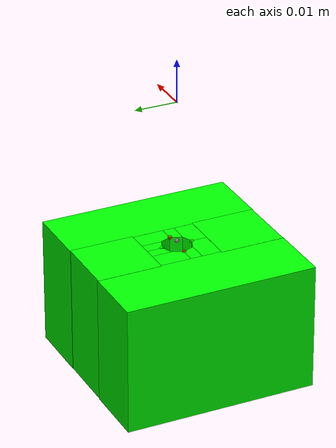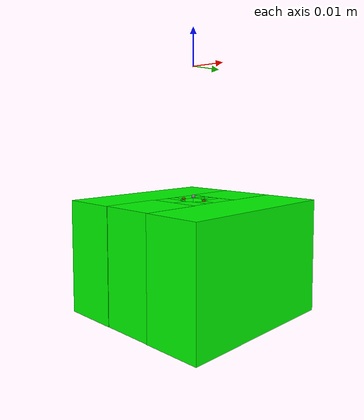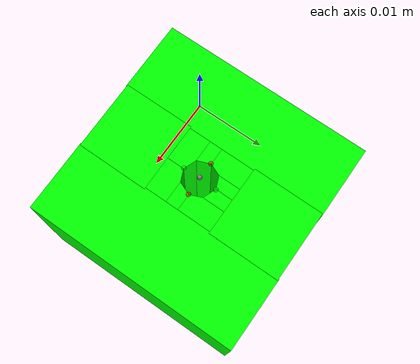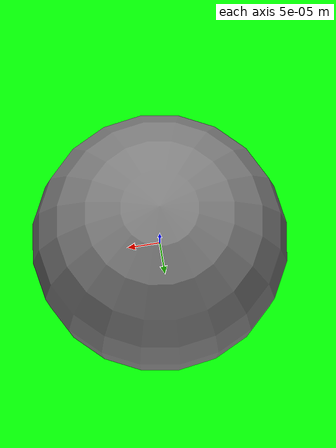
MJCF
<mujoco model="hole">

 <asset>

			<mesh file="meshes/object/Sphere_hull_1.stl" name="1" scale="1.5 1.5 3" />
			<mesh file="meshes/object/Cube_hull_1.stl" name="2" scale="1.5 1.5 3" />
			<mesh file="meshes/object/Cube_hull_2.stl" name="3" scale="1.5 1.5 3" />
			<mesh file="meshes/object/Cube_hull_3.stl" name="4" scale="1.5 1.5 3" />
			<mesh file="meshes/object/Cube_hull_4.stl" name="5" scale="1.5 1.5 3" />
			<mesh file="meshes/object/Cube_hull_5.stl" name="6" scale="1.5 1.5 3" />
			<mesh file="meshes/object/Cube_hull_6.stl" name="7" scale="1.5 1.5 3" />
			<mesh file="meshes/object/Cube_hull_7.stl" name="8" scale="1.5 1.5 3" />
			<mesh file="meshes/object/Cube_hull_8.stl" name="9" scale="1.5 1.5 3" />
			<mesh file="meshes/object/Cube_001_hull_1.stl" name="10" scale="1.5 1.5 2.97" />
			<mesh file="meshes/object/Cube_002_hull_1.stl" name="11" scale="1.5 1.5 2.97" />
			<mesh file="meshes/object/Cube_003_hull_1.stl" name="12" scale="1.5 1.5 2.92" />
			<mesh file="meshes/object/Cube_004_hull_1.stl" name="13" scale="1.5 1.5 2.92" />

	<texture file="../textures/ceramic.png" name="tex-ceramic"/>
    <material name="ceramic" reflectance="0.5" texrepeat="1 1" texture="tex-ceramic" texuniform="true"/>
  </asset>

  <worldbody>

    <body>
		<body name="object">
		<geom pos="0 0 -0.05" mesh="2" type="mesh" solimp="0.998 0.998 0.001" solref="0.001 1" density="6700" friction="0.95 0.3 0.1" material="ceramic" group="1" condim="4" rgba="0 1 0 1"  />
		<geom pos="0 0 -0.05" mesh="3" type="mesh" solimp="0.998 0.998 0.001" solref="0.001 1" density="6700" friction="0.95 0.3 0.1" material="ceramic" group="1" condim="4" rgba="0 1 0 1"  />
		<geom pos="0 0 -0.05" mesh="4" type="mesh" solimp="0.998 0.998 0.001" solref="0.001 1" density="6700" friction="0.95 0.3 0.1" material="ceramic" group="1" condim="4" rgba="0 1 0 1"  />
		<geom pos="0 0 -0.05" mesh="5" type="mesh" solimp="0.998 0.998 0.001" solref="0.001 1" density="6700" friction="0.95 0.3 0.1" material="ceramic" group="1" condim="4" rgba="0 1 0 1"  />
		<geom pos="0 0 -0.05" mesh="6" type="mesh" solimp="0.998 0.998 0.001" solref="0.001 1" density="6700" friction="0.95 0.3 0.1" material="ceramic" group="1" condim="4" rgba="0 1 0 1"  />
		<geom pos="0 0 -0.05" mesh="7" type="mesh" solimp="0.998 0.998 0.001" solref="0.001 1" density="6700" friction="0.95 0.3 0.1" material="ceramic" group="1" condim="4" rgba="0 1 0 1"  />
		<geom pos="0 0 -0.05" mesh="8" type="mesh" solimp="0.998 0.998 0.001" solref="0.001 1" density="6700" friction="0.95 0.3 0.1" material="ceramic" group="1" condim="4" rgba="0 1 0 1"  />
		<geom pos="0 0 -0.05" mesh="9" type="mesh" solimp="0.998 0.998 0.001" solref="0.001 1" density="6700" friction="0.95 0.3 0.1" material="ceramic" group="1" condim="4" rgba="0 1 0 1"  />
		<geom pos="0 0 -0.05" mesh="10" type="mesh" solimp="0.998 0.998 0.001" solref="0.001 1" density="6700" friction="0.95 0.3 0.1" material="ceramic" group="1" condim="4" rgba="0 1 0 1"  />
		<geom pos="0 0 -0.05" mesh="11" type="mesh" solimp="0.998 0.998 0.001" solref="0.001 1" density="6700" friction="0.95 0.3 0.1" material="ceramic" group="1" condim="4" rgba="0 1 0 1"  />
		<geom pos="0 0 -0.05" mesh="12" type="mesh" solimp="0.998 0.998 0.001" solref="0.001 1" density="6700" friction="0.95 0.3 0.1" material="ceramic" group="1" condim="4" rgba="0 1 0 1"  />
		<geom pos="0 0 -0.05" mesh="13" type="mesh" solimp="0.998 0.998 0.001" solref="0.001 1" density="6700" friction="0.95 0.3 0.1" material="ceramic" group="1" condim="4" rgba="0 1 0 1"  />

<!--		sphere above the hole (grey)-->
		<site name="middle_cylinder" pos="0.000 0.000 0.0" size="0.0002"/>

<!--		red dot inside the hole	-->
		<body name="hole" pos="0.00 0.000 -0.06">
			<camera mode="fixed" name="board" pos="0.15 0 0.18" quat="0.653 0.271 0.271 0.653" />
			<site name="surface" pos="0.0 0.0 0.026" size="0.0005" type="sphere" group="1"/>
			<site name="d_x" pos="0.0037 0 0.025" size="0.0005" rgba="1 0 0 0.5" type="sphere" group="1"/>
			<site name="d_y" pos="0 0.0037 0.025" size="0.0005" rgba="0 1 0 0.5" type="sphere" group="1"/>
			<site name="d_mx" pos="-0.0037 0 0.025" size="0.0005" rgba="1 0 0 0.5" type="sphere" group="1"/>
			<site name="d_my" pos="0 -0.0037 0.025" size="0.0005" rgba="0 1 0 0.5" type="sphere" group="1"/>
			<geom density="3000" friction="1.0 0.005 0.0001" group="1" name="hole"  rgba="1 0 0 1" size="0.001 0.001 0.001" type="sphere" />
		</body>
		</body>

      <body name="visual">
      </body>

    </body>

  </worldbody>
</mujoco>
